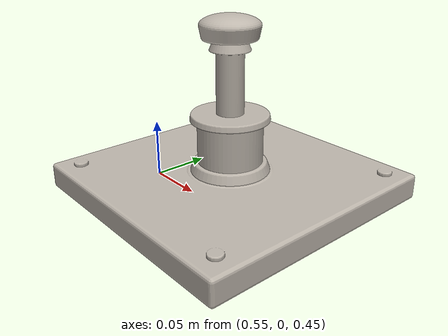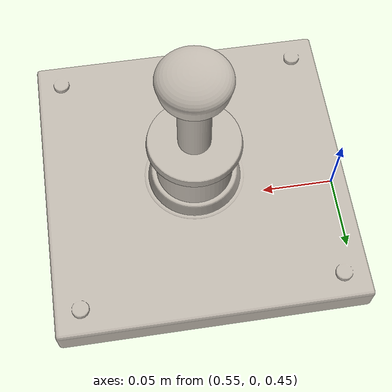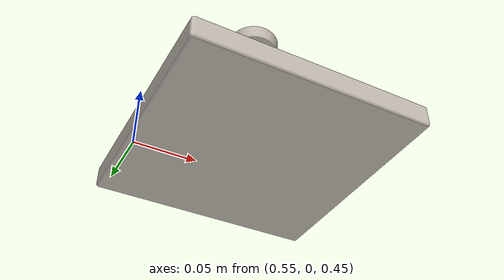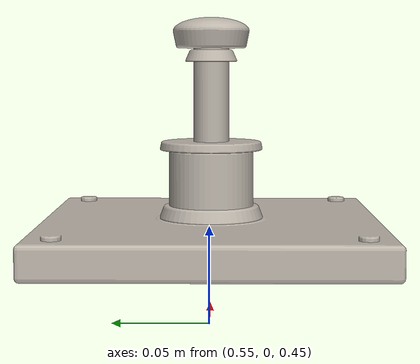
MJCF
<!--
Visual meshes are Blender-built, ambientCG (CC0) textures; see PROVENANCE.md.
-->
<?xml version="1.0"?>
<mujoco model="button">
  <compiler angle="radian" meshdir="assets" texturedir="assets"/>

  <asset>
    <texture name="button_panel_tex" type="2d" file="button_panel_tex.png"/>
    <material name="button_panel_mat" texture="button_panel_tex" specular="0.35" shininess="0.25"/>
    <mesh name="button_panel_vis" file="button_panel_vis.obj"/>
    <texture name="button_housing_tex" type="2d" file="button_housing_tex.png"/>
    <material name="button_housing_mat" texture="button_housing_tex" specular="0.2" shininess="0.2"/>
    <mesh name="button_housing_vis" file="button_housing_vis.obj"/>
    <texture name="button_collar_tex" type="2d" file="button_collar_tex.png"/>
    <material name="button_collar_mat" texture="button_collar_tex" specular="0.25" shininess="0.25"/>
    <mesh name="button_collar_vis" file="button_collar_vis.obj"/>
    <texture name="button_rod_tex" type="2d" file="button_rod_tex.png"/>
    <material name="button_rod_mat" texture="button_rod_tex" specular="0.5" shininess="0.5"/>
    <mesh name="button_rod_vis" file="button_rod_vis.obj"/>
    <texture name="button_cap_tex" type="2d" file="button_cap_tex.png"/>
    <material name="button_cap_mat" texture="button_cap_tex" specular="0.45" shininess="0.5"/>
    <mesh name="button_cap_vis" file="button_cap_vis.obj"/>
  </asset>

  <worldbody>
    <body name="button_base" pos="0.65 0 0.5" mocap="true">
      <!-- Visuals (static): 200x200x20 mm steel panel, black guide barrel, yellow collar. -->
      <geom name="vis_panel" type="mesh" mesh="button_panel_vis" material="button_panel_mat" contype="0" conaffinity="0" group="2" mass="0"/>
      <geom name="vis_housing" type="mesh" mesh="button_housing_vis" material="button_housing_mat" contype="0" conaffinity="0" group="2" mass="0"/>
      <geom name="vis_collar" type="mesh" mesh="button_collar_vis" material="button_collar_mat" contype="0" conaffinity="0" group="2" mass="0"/>
      <!-- Panel collider (unchanged from the primitive asset, incl. contact params). -->
      <geom type="box" name="button_body" size="0.1 0.1 0.01" pos="0 0 -0.02" group="3"
            condim="3" friction="1 0.03 0.003" rgba="0.5 0.5 0.5 0.3"
            contype="2" conaffinity="1" solref="0.01 1"/>
      <!-- Base site at the cap centre when joint = 0. -->
      <site name="base_site" pos="0.0 0.0 0.1" size="0.004" rgba="0 0 1 0.3"/>
      <body name="handle">
        <joint name="button_slide" type="slide" axis="0 0 1" range="-0.05 0.0" limited="true" damping="5" stiffness="1000"/>
        <!-- Visuals (moving): bright-steel plunger rod + red mushroom cap. -->
        <geom name="vis_rod" type="mesh" mesh="button_rod_vis" material="button_rod_mat" contype="0" conaffinity="0" group="2" mass="0"/>
        <geom name="vis_cap" type="mesh" mesh="button_cap_vis" material="button_cap_mat" contype="0" conaffinity="0" group="2" mass="0"/>
        <geom type="cylinder" name="handle" pos="0 0 0.1" size="0.0225 0.009" mass="0.036" group="3"
              condim="3" friction="1 0.03 0.003" rgba="0.5 0.5 0.5 0.3"
              contype="2" conaffinity="1" solref="0.01 1"/>
        <!-- Object site for observations (manipulation point). -->
        <site name="object_site" pos="0 0 0.1" size="0.004" rgba="1 0 0 1"/>
      </body>
    </body>
  </worldbody>
</mujoco>
